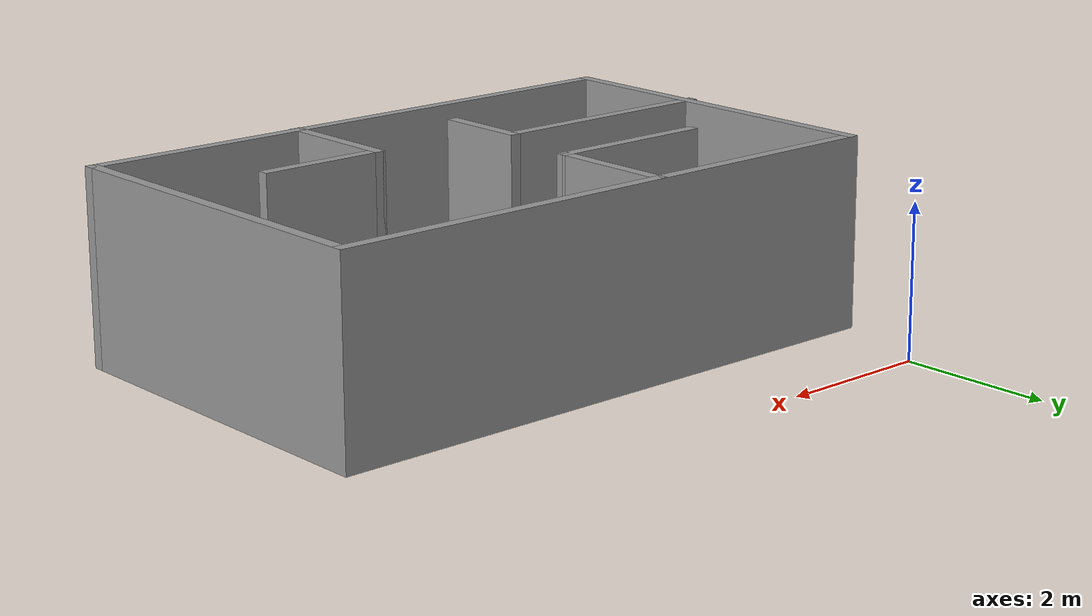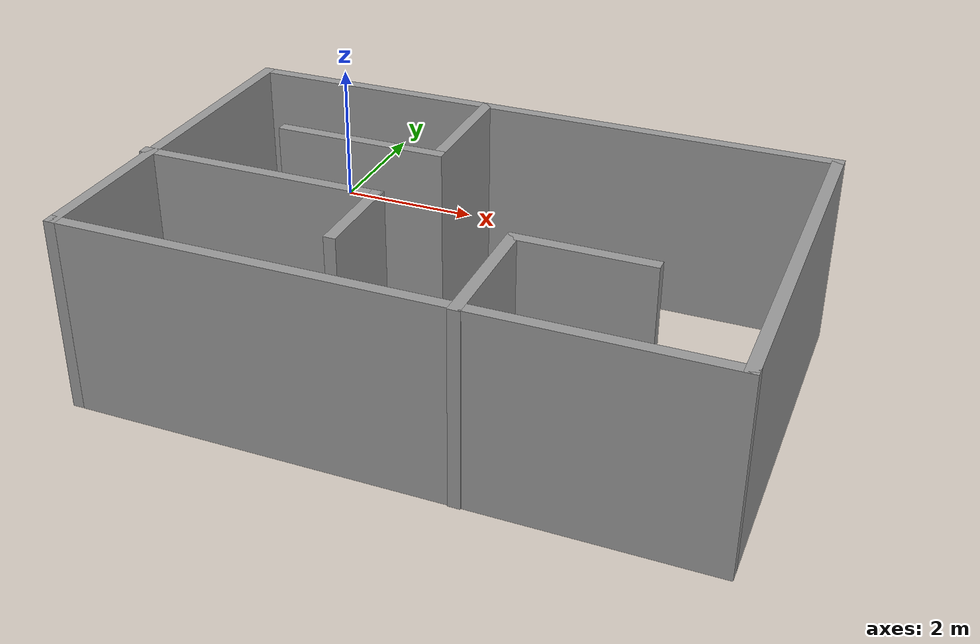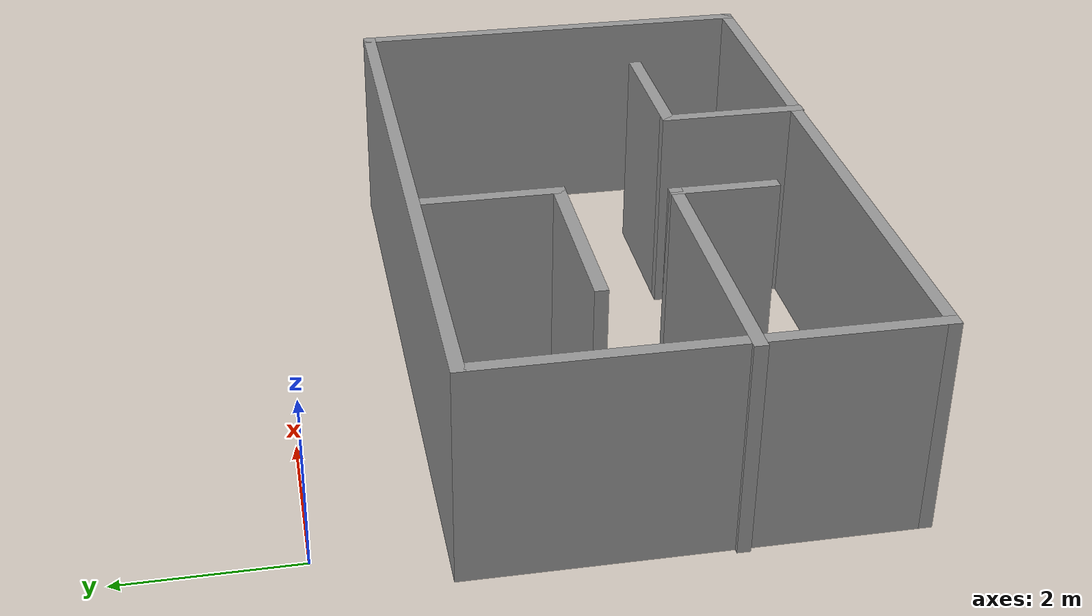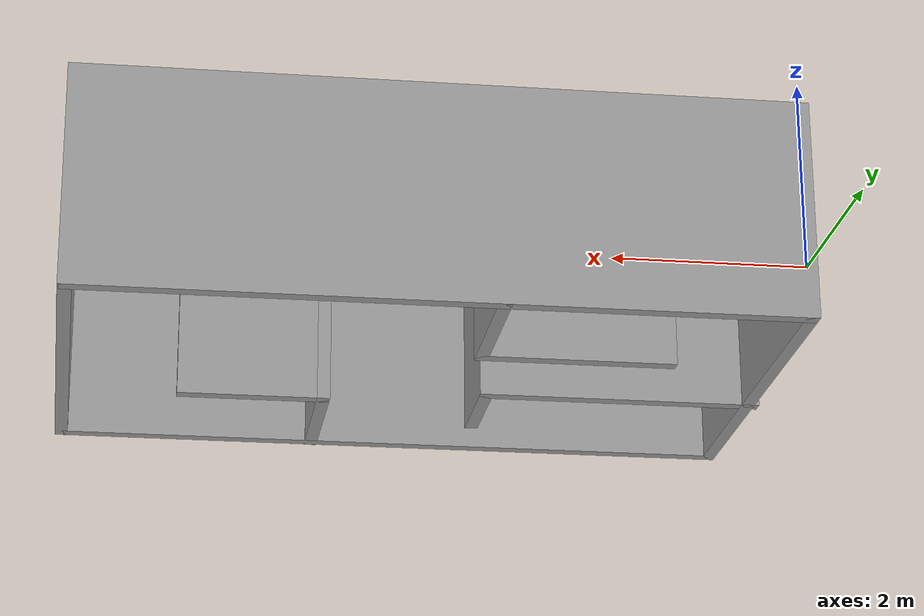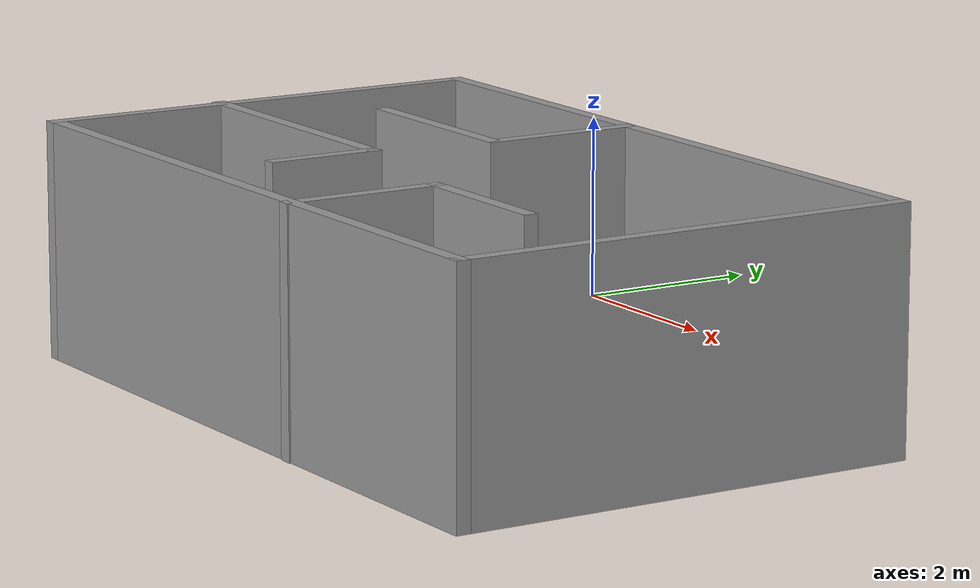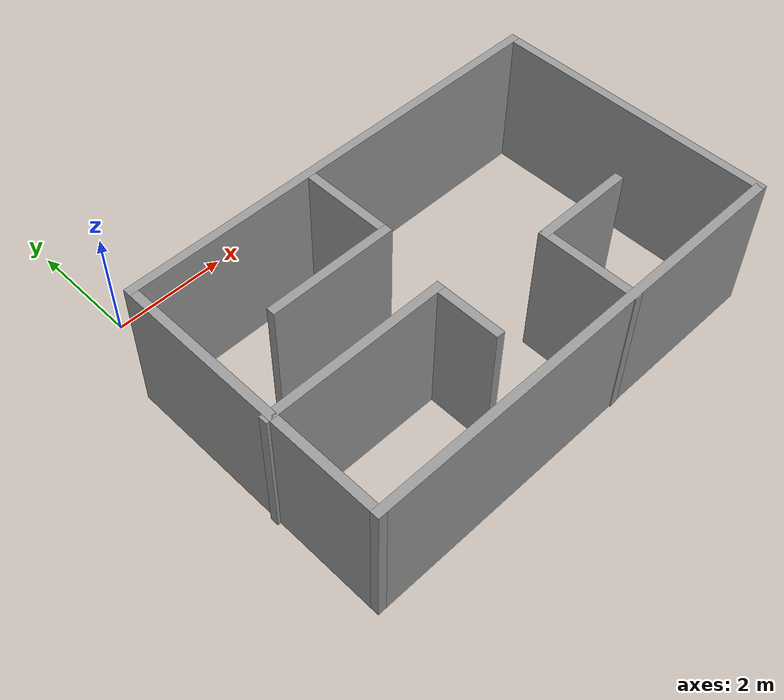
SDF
<?xml version='1.0'?>
<sdf version='1.7'>
  <model name='room'>
    <pose>3.44821 -3.2053 0 0 -0 0</pose>
    <link name='Wall_0'>
      <collision name='Wall_0_Collision'>
        <geometry>
          <box>
            <size>8 0.15 2.5</size>
          </box>
        </geometry>
        <pose>0 0 1.25 0 -0 0</pose>
      </collision>
      <visual name='Wall_0_Visual'>
        <pose>0 0 1.25 0 -0 0</pose>
        <geometry>
          <box>
            <size>8 0.15 2.5</size>
          </box>
        </geometry>
        <material>
          <script>
            <uri>file://media/materials/scripts/gazebo.material</uri>
            <name>Gazebo/Grey</name>
          </script>
          <ambient>1 1 1 1</ambient>
        </material>
        <meta>
          <layer>0</layer>
        </meta>
      </visual>
      <pose>0.026788 1.7353 0 0 -0 0</pose>
    </link>
    <link name='Wall_1'>
      <collision name='Wall_1_Collision'>
        <geometry>
          <box>
            <size>5 0.15 2.5</size>
          </box>
        </geometry>
        <pose>0 0 1.25 0 -0 0</pose>
      </collision>
      <visual name='Wall_1_Visual'>
        <pose>0 0 1.25 0 -0 0</pose>
        <geometry>
          <box>
            <size>5 0.15 2.5</size>
          </box>
        </geometry>
        <material>
          <script>
            <uri>file://media/materials/scripts/gazebo.material</uri>
            <name>Gazebo/Grey</name>
          </script>
          <ambient>1 1 1 1</ambient>
        </material>
        <meta>
          <layer>0</layer>
        </meta>
      </visual>
      <pose>3.95179 -0.689702 0 0 -0 -1.5708</pose>
    </link>
    <link name='Wall_11'>
      <collision name='Wall_11_Collision'>
        <geometry>
          <box>
            <size>1.75 0.15 2.5</size>
          </box>
        </geometry>
        <pose>0 0 1.25 0 -0 0</pose>
      </collision>
      <visual name='Wall_11_Visual'>
        <pose>0 0 1.25 0 -0 0</pose>
        <geometry>
          <box>
            <size>1.75 0.15 2.5</size>
          </box>
        </geometry>
        <material>
          <script>
            <uri>file://media/materials/scripts/gazebo.material</uri>
            <name>Gazebo/Grey</name>
          </script>
          <ambient>1 1 1 1</ambient>
        </material>
        <meta>
          <layer>0</layer>
        </meta>
      </visual>
      <pose>0.980409 -2.3303 0 0 -0 1.5708</pose>
    </link>
    <link name='Wall_12'>
      <collision name='Wall_12_Collision'>
        <geometry>
          <box>
            <size>1.75 0.15 2.5</size>
          </box>
        </geometry>
        <pose>0 0 1.25 0 -0 0</pose>
      </collision>
      <visual name='Wall_12_Visual'>
        <pose>0 0 1.25 0 -0 0</pose>
        <geometry>
          <box>
            <size>1.75 0.15 2.5</size>
          </box>
        </geometry>
        <material>
          <script>
            <uri>file://media/materials/scripts/gazebo.material</uri>
            <name>Gazebo/Grey</name>
          </script>
          <ambient>1 1 1 1</ambient>
        </material>
        <meta>
          <layer>0</layer>
        </meta>
      </visual>
      <pose>1.78041 -1.5303 0 0 -0 0</pose>
    </link>
    <link name='Wall_2'>
      <collision name='Wall_2_Collision'>
        <geometry>
          <box>
            <size>8 0.15 2.5</size>
          </box>
        </geometry>
        <pose>0 0 1.25 0 -0 0</pose>
      </collision>
      <visual name='Wall_2_Visual'>
        <pose>0 0 1.25 0 -0 0</pose>
        <geometry>
          <box>
            <size>8 0.15 2.5</size>
          </box>
        </geometry>
        <material>
          <script>
            <uri>file://media/materials/scripts/gazebo.material</uri>
            <name>Gazebo/Grey</name>
          </script>
          <ambient>1 1 1 1</ambient>
        </material>
        <meta>
          <layer>0</layer>
        </meta>
      </visual>
      <pose>0.026788 -3.1147 0 0 -0 3.14159</pose>
    </link>
    <link name='Wall_3'>
      <collision name='Wall_3_Collision'>
        <geometry>
          <box>
            <size>5 0.15 2.5</size>
          </box>
        </geometry>
        <pose>0 0 1.25 0 -0 0</pose>
      </collision>
      <visual name='Wall_3_Visual'>
        <pose>0 0 1.25 0 -0 0</pose>
        <geometry>
          <box>
            <size>5 0.15 2.5</size>
          </box>
        </geometry>
        <material>
          <script>
            <uri>file://media/materials/scripts/gazebo.material</uri>
            <name>Gazebo/Grey</name>
          </script>
          <ambient>1 1 1 1</ambient>
        </material>
        <meta>
          <layer>0</layer>
        </meta>
      </visual>
      <pose>-3.89821 -0.689702 0 0 -0 1.5708</pose>
    </link>
    <link name='Wall_5'>
      <collision name='Wall_5_Collision'>
        <geometry>
          <box>
            <size>1.75 0.15 2.5</size>
          </box>
        </geometry>
        <pose>0 0 1.25 0 -0 0</pose>
      </collision>
      <visual name='Wall_5_Visual'>
        <pose>0 0 1.25 0 -0 0</pose>
        <geometry>
          <box>
            <size>1.75 0.15 2.5</size>
          </box>
        </geometry>
        <material>
          <script>
            <uri>file://media/materials/scripts/gazebo.material</uri>
            <name>Gazebo/Grey</name>
          </script>
          <ambient>1 1 1 1</ambient>
        </material>
        <meta>
          <layer>0</layer>
        </meta>
      </visual>
      <pose>-0.611186 0.914449 0 0 -0 -1.5708</pose>
    </link>
    <link name='Wall_6'>
      <collision name='Wall_6_Collision'>
        <geometry>
          <box>
            <size>2.25 0.15 2.5</size>
          </box>
        </geometry>
        <pose>0 0 1.25 0 -0 0</pose>
      </collision>
      <visual name='Wall_6_Visual'>
        <pose>0 0 1.25 0 -0 0</pose>
        <geometry>
          <box>
            <size>2.25 0.15 2.5</size>
          </box>
        </geometry>
        <material>
          <script>
            <uri>file://media/materials/scripts/gazebo.material</uri>
            <name>Gazebo/Grey</name>
          </script>
          <ambient>1 1 1 1</ambient>
        </material>
        <meta>
          <layer>0</layer>
        </meta>
      </visual>
      <pose>-1.66119 0.114449 0 0 -0 3.14159</pose>
    </link>
    <link name='Wall_8'>
      <collision name='Wall_8_Collision'>
        <geometry>
          <box>
            <size>3.25 0.15 2.5</size>
          </box>
        </geometry>
        <pose>0 0 1.25 0 -0 0</pose>
      </collision>
      <visual name='Wall_8_Visual'>
        <pose>0 0 1.25 0 -0 0</pose>
        <geometry>
          <box>
            <size>3.25 0.15 2.5</size>
          </box>
        </geometry>
        <material>
          <script>
            <uri>file://media/materials/scripts/gazebo.material</uri>
            <name>Gazebo/Grey</name>
          </script>
          <ambient>1 1 1 1</ambient>
        </material>
        <meta>
          <layer>0</layer>
        </meta>
      </visual>
      <pose>-2.40179 -1.15392 0 0 -0 0</pose>
    </link>
    <link name='Wall_9'>
      <collision name='Wall_9_Collision'>
        <geometry>
          <box>
            <size>1.25 0.15 2.5</size>
          </box>
        </geometry>
        <pose>0 0 1.25 0 -0 0</pose>
      </collision>
      <visual name='Wall_9_Visual'>
        <pose>0 0 1.25 0 -0 0</pose>
        <geometry>
          <box>
            <size>1.25 0.15 2.5</size>
          </box>
        </geometry>
        <material>
          <script>
            <uri>file://media/materials/scripts/gazebo.material</uri>
            <name>Gazebo/Grey</name>
          </script>
          <ambient>1 1 1 1</ambient>
        </material>
        <meta>
          <layer>0</layer>
        </meta>
      </visual>
      <pose>-0.851788 -1.70392 0 0 -0 -1.5708</pose>
    </link>
    <static>1</static>
  </model>
</sdf>
